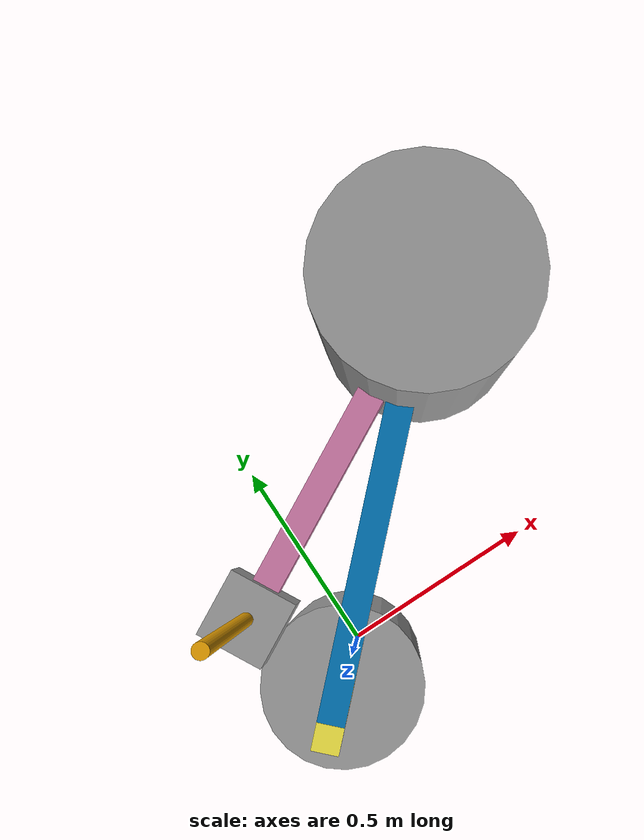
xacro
<?xml version="1.0" ?>
<robot name="scarabot" xmlns:xacro="http://www.ros.org/wiki/xacro">

    <!-- MACROS -->
<xacro:property name="m" value="1" />
<xacro:macro name="default_link_geometry">
    <geometry>
        <box size="0.04 0.04 0.6"/>
    </geometry>
</xacro:macro>

<xacro:macro name="revolute_link" params="number">
  <link name="revolute_link${number}">
    <collision>
      <origin rpy="0 0 0" xyz="0 0 0.25"/>
      <geometry>
        <cylinder radius="0.15" length="0.5"/>
      </geometry>
    </collision>

    <visual>
      <origin rpy="0 0 0" xyz="0 0 0.25"/>
      <geometry>
        <cylinder radius="0.15" length="0.5"/>
      </geometry>
    </visual>

    <inertial>
      <origin rpy="0 0 0" xyz="0 0 0.25"/>
    <mass value="0.1"/>
    <inertia
      ixx="0.002646" ixy="0.0" ixz="0.0"
      iyy="0.002646" iyz="0.0"
      izz="0.001125"/>
    </inertial>
  </link>
<gazebo reference="revolute_link${number}">
  <material>Gazebo/Grey</material>
</gazebo>
</xacro:macro>
<xacro:macro name="vertical_link" params="number">
  <link name="vertical_link${number}">
    <collision>
      <origin rpy="0 0 0" xyz="0 0 0.3"/>
      <geometry>
        <box size="0.04 0.04 0.6"/>
      </geometry>
    </collision>

    <visual>
      <origin rpy="0 0 0" xyz="0 0 0.3"/>
      <xacro:default_link_geometry/>
    </visual>

    <inertial>
      <origin rpy="0 0 0" xyz="0 0 0.3"/>
    <mass value="1"/>
    <inertia
      ixx="0.03013" ixy="0.0" ixz="0.0"
      iyy="0.00026" iyz="0.0"
      izz="0.03013"/>
    </inertial>
  </link>
</xacro:macro>
<xacro:macro name="horizontal_link" params="number">
  <link name="horizontal_link${number}">
    <collision>
      <origin rpy="0 0 0" xyz="0.25 0 0"/>
      <geometry>
        <box size="0.5 0.04 0.04"/>
      </geometry>
    </collision>

    <visual>
      <origin rpy="0 0 0" xyz="0.25 0 0"/>
      <geometry>
        <box size="0.5 0.04 0.04"/>
      </geometry>
    </visual>

    <inertial>
      <origin rpy="0 0 0" xyz="0.25 0 0"/>
    <mass value="1"/>
    <inertia
      ixx="0.00026" ixy="0.0" ixz="0.0"
      iyy="0.02096" iyz="0.0"
      izz="0.02096"/>
    </inertial>
  </link>
</xacro:macro>
<xacro:macro name="prismatic_link">
  <link name="prismatic_link">
    <collision>
      <origin rpy="0 0 0" xyz="0 0 0"/>
      <geometry>
        <box size="0.1 0.1 0.1"/>
      </geometry>
            <surface>
      </surface>
    </collision>

    <visual>
       <origin rpy="0 0 0" xyz="0 0 0"/>
      <geometry>
        <box size="0.1 0.1 0.1"/>
      </geometry>
    </visual>

    <inertial>
      <origin rpy="0 0 0" xyz="0 0 0"/>
    <mass value="0.1"/>
    <inertia
      ixx="0.000167" ixy="0.0" ixz="0.0"
      iyy="0.000167" iyz="0.0"
      izz="0.000167"/>
    </inertial>
  </link>
    <gazebo reference="prismatic_link">
  <material>Gazebo/Grey</material>
        <turnGravityOff>true</turnGravityOff>
</gazebo>
</xacro:macro>

<!-- * * * Link Definitions * * * -->
  <link name="world"/>

<!-- * * * joint fixed with world * * * -->
  <joint name="worldjoint" type="fixed">
    <origin rpy="0 0 0" xyz="0 0 0"/>
    <parent link="world"/>
    <child link="vertical_link1"/>
  </joint>

<!-- * * * vertical_link1 * * * -->
  <xacro:vertical_link number="1"/>

<!-- * * * revolute_joint_1 * * * -->
  <joint name="revolute_joint_1" type="revolute">
    <axis xyz="0 0 1"/>
    <origin rpy="0 0 0.779923399892" xyz="0 0 0.6"/>
    <limit effort="100" lower="-3.1415926535897931" upper="3.1415926535897931" velocity="0.1"/>
    <parent link="vertical_link1"/>
    <child link="revolute_link1"/>
  </joint>

<!-- * * * revolute_link_1 * * * -->
  <xacro:revolute_link number="1"/>

<!-- * * * revolute1-vertical_link2  fixed * * * -->
  <joint name="joint_r1_v2" type="fixed">
    <origin rpy="0 0 0" xyz="0 0 0.5"/>
    <parent link="revolute_link1"/>
    <child link="vertical_link2"/>
  </joint>
<!-- * * * vertical_link2 * * * -->
  <xacro:vertical_link number="2"/>

<!-- * * * vertical_link2-horizontal_link1 fixed* * * -->
  <joint name="joint_v2_h1" type="fixed">
    <origin rpy="0 0 0" xyz="0.02 0 0.58"/>
    <parent link="vertical_link2"/>
    <child link="horizontal_link1"/>
  </joint>

<!-- * * * horizontal_link1 * * * -->
  <xacro:horizontal_link number="1"/>

<!-- * * * revolute_joint_2 * * * -->
  <joint name="revolute_joint_2" type="revolute">
    <axis xyz="0 0 1"/>
    <limit effort="100" lower="-3" upper="3" velocity="0.1"/>
    <origin rpy="0 0 2.85322720915" xyz="0.6 0 -0.25"/>
    <parent link="horizontal_link1"/>
    <child link="revolute_link2"/>
  </joint>

<!-- * * * revolute_link_2 * * * -->
  <xacro:revolute_link number="2"/>

<!-- * * * vertical_link2-horizontal_link2 fixed* * * -->
  <joint name="joint_v2_h2" type="fixed">
    <origin rpy="0 0 0" xyz="0 0 0.25"/>
    <parent link="revolute_link2"/>
    <child link="horizontal_link2"/>
  </joint>

<!-- * * * horizontal_link2 * * * -->
  <xacro:horizontal_link number="2"/>

<!-- * * * prismatic_joint * * * -->
  <joint name="prismatic_joint" type="prismatic">
    <axis xyz="0 0 1"/>
    <limit effort="100" lower="-0.5" upper="0.5" velocity="0.1"/>
    <origin rpy="0 0 0" xyz="0.5 0 0"/>
    <parent link="horizontal_link2"/>
    <child link="prismatic_link"/>
  </joint>

<!-- * * * prismatic_link * * * -->
  <xacro:prismatic_link/>

<!-- * * * moving_link_horizontal_link2  fixed* * * -->
  <joint name="joint_h2_movelink" type="fixed">
    <parent link="horizontal_link2"/>
    <child link="moving_link"/>
    <origin rpy="0 0 0" xyz="0.5 0 0"/>
  </joint>

<!-- * * * moving_link * * * -->
  <link name="moving_link">
    <collision>
      <origin rpy="0 0 0" xyz="0 0 0"/>
      <geometry>
        <cylinder radius="0.01" length="1"/>
      </geometry>
    </collision>

    <visual>
      <origin rpy="0 0 0" xyz="0 0 0"/>
      <geometry>
        <cylinder radius="0.01" length="1"/>
      </geometry>
    </visual>

    <inertial>
      <origin rpy="0 0 0" xyz="0 0 0"/>
    <mass value="1"/>
    <inertia
      ixx="0" ixy="0.0" ixz="0.0"
      iyy="0" iyz="0.0"
      izz="0"/>
    </inertial>
  </link>
</robot>
